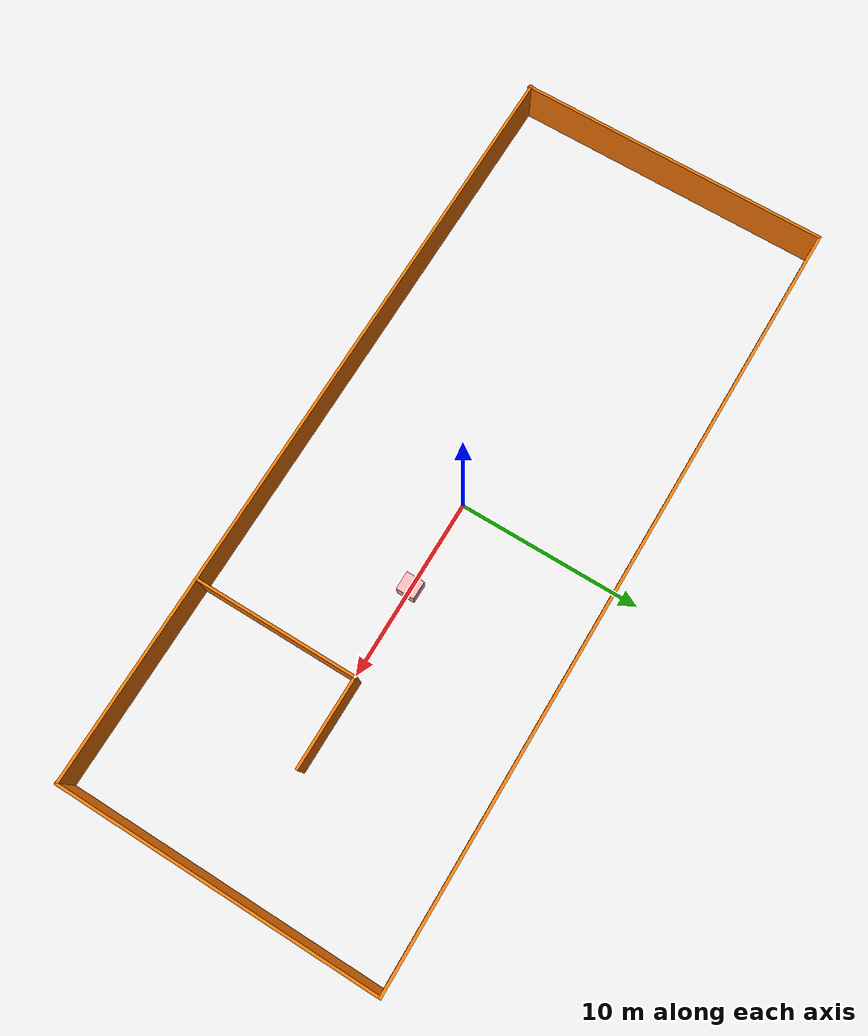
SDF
<?xml version='1.0'?>
<sdf version='1.7'>
  <model name='selfdefine1'>
    <link name='Wall_37'>
      <pose>0.025291 8.67492 0 0 -0 0.002157</pose>
      <self_collide>0</self_collide>
      <enable_wind>0</enable_wind>
      <kinematic>0</kinematic>
      <visual name='Wall_37_Visual'>
        <pose>0 0 1.25 0 -0 0</pose>
        <geometry>
          <box>
            <size>42.6982 0.15 2.5</size>
          </box>
        </geometry>
        <material>
          <script>
            <uri>file://media/materials/scripts/gazebo.material</uri>
            <name>Gazebo/Grey</name>
          </script>
          <ambient>0.996078 0.47451 0.0196078 1</ambient>
          <shader type='pixel'/>
        </material>
        <meta>
          <layer>0</layer>
        </meta>
        <transparency>0</transparency>
        <cast_shadows>1</cast_shadows>
      </visual>
      <collision name='Wall_37_Collision'>
        <laser_retro>0</laser_retro>
        <max_contacts>10</max_contacts>
        <pose>0 0 1.25 0 -0 0</pose>
        <geometry>
          <box>
            <size>42.6982 0.15 2.5</size>
          </box>
        </geometry>
        <surface>
          <friction>
            <ode>
              <mu>1</mu>
              <mu2>1</mu2>
              <fdir1>0 0 0</fdir1>
              <slip1>0</slip1>
              <slip2>0</slip2>
            </ode>
            <torsional>
              <coefficient>1</coefficient>
              <patch_radius>0</patch_radius>
              <surface_radius>0</surface_radius>
              <use_patch_radius>1</use_patch_radius>
              <ode>
                <slip>0</slip>
              </ode>
            </torsional>
          </friction>
          <bounce>
            <restitution_coefficient>0</restitution_coefficient>
            <threshold>1e+06</threshold>
          </bounce>
          <contact>
            <collide_without_contact>0</collide_without_contact>
            <collide_without_contact_bitmask>1</collide_without_contact_bitmask>
            <collide_bitmask>1</collide_bitmask>
            <ode>
              <soft_cfm>0</soft_cfm>
              <soft_erp>0.2</soft_erp>
              <kp>1e+13</kp>
              <kd>1</kd>
              <max_vel>0.01</max_vel>
              <min_depth>0</min_depth>
            </ode>
            <bullet>
              <split_impulse>1</split_impulse>
              <split_impulse_penetration_threshold>-0.01</split_impulse_penetration_threshold>
              <soft_cfm>0</soft_cfm>
              <soft_erp>0.2</soft_erp>
              <kp>1e+13</kp>
              <kd>1</kd>
            </bullet>
          </contact>
        </surface>
      </collision>
    </link>
    <link name='Wall_39'>
      <pose>-21.2488 -0.045966 0 0 0 -1.5708</pose>
      <self_collide>0</self_collide>
      <enable_wind>0</enable_wind>
      <kinematic>0</kinematic>
      <visual name='Wall_39_Visual'>
        <pose>0 0 1.25 0 -0 0</pose>
        <geometry>
          <box>
            <size>17.5 0.15 2.5</size>
          </box>
        </geometry>
        <material>
          <script>
            <uri>file://media/materials/scripts/gazebo.material</uri>
            <name>Gazebo/Grey</name>
          </script>
          <ambient>0.996078 0.47451 0.0196078 1</ambient>
          <shader type='pixel'/>
        </material>
        <meta>
          <layer>0</layer>
        </meta>
        <transparency>0</transparency>
        <cast_shadows>1</cast_shadows>
      </visual>
      <collision name='Wall_39_Collision'>
        <laser_retro>0</laser_retro>
        <max_contacts>10</max_contacts>
        <pose>0 0 1.25 0 -0 0</pose>
        <geometry>
          <box>
            <size>17.5 0.15 2.5</size>
          </box>
        </geometry>
        <surface>
          <friction>
            <ode>
              <mu>1</mu>
              <mu2>1</mu2>
              <fdir1>0 0 0</fdir1>
              <slip1>0</slip1>
              <slip2>0</slip2>
            </ode>
            <torsional>
              <coefficient>1</coefficient>
              <patch_radius>0</patch_radius>
              <surface_radius>0</surface_radius>
              <use_patch_radius>1</use_patch_radius>
              <ode>
                <slip>0</slip>
              </ode>
            </torsional>
          </friction>
          <bounce>
            <restitution_coefficient>0</restitution_coefficient>
            <threshold>1e+06</threshold>
          </bounce>
          <contact>
            <collide_without_contact>0</collide_without_contact>
            <collide_without_contact_bitmask>1</collide_without_contact_bitmask>
            <collide_bitmask>1</collide_bitmask>
            <ode>
              <soft_cfm>0</soft_cfm>
              <soft_erp>0.2</soft_erp>
              <kp>1e+13</kp>
              <kd>1</kd>
              <max_vel>0.01</max_vel>
              <min_depth>0</min_depth>
            </ode>
            <bullet>
              <split_impulse>1</split_impulse>
              <split_impulse_penetration_threshold>-0.01</split_impulse_penetration_threshold>
              <soft_cfm>0</soft_cfm>
              <soft_erp>0.2</soft_erp>
              <kp>1e+13</kp>
              <kd>1</kd>
            </bullet>
          </contact>
        </surface>
      </collision>
    </link>
    <link name='Wall_41'>
      <pose>-2.1e-05 -8.64449 0 0 -0 0.000718</pose>
      <self_collide>0</self_collide>
      <enable_wind>0</enable_wind>
      <kinematic>0</kinematic>
      <visual name='Wall_41_Visual'>
        <pose>0 0 1.25 0 -0 0</pose>
        <geometry>
          <box>
            <size>42.7488 0.15 2.5</size>
          </box>
        </geometry>
        <material>
          <script>
            <uri>file://media/materials/scripts/gazebo.material</uri>
            <name>Gazebo/Grey</name>
          </script>
          <ambient>0.996078 0.47451 0.0196078 1</ambient>
          <shader type='pixel'/>
        </material>
        <meta>
          <layer>0</layer>
        </meta>
        <transparency>0</transparency>
        <cast_shadows>1</cast_shadows>
      </visual>
      <collision name='Wall_41_Collision'>
        <laser_retro>0</laser_retro>
        <max_contacts>10</max_contacts>
        <pose>0 0 1.25 0 -0 0</pose>
        <geometry>
          <box>
            <size>42.7488 0.15 2.5</size>
          </box>
        </geometry>
        <surface>
          <friction>
            <ode>
              <mu>1</mu>
              <mu2>1</mu2>
              <fdir1>0 0 0</fdir1>
              <slip1>0</slip1>
              <slip2>0</slip2>
            </ode>
            <torsional>
              <coefficient>1</coefficient>
              <patch_radius>0</patch_radius>
              <surface_radius>0</surface_radius>
              <use_patch_radius>1</use_patch_radius>
              <ode>
                <slip>0</slip>
              </ode>
            </torsional>
          </friction>
          <bounce>
            <restitution_coefficient>0</restitution_coefficient>
            <threshold>1e+06</threshold>
          </bounce>
          <contact>
            <collide_without_contact>0</collide_without_contact>
            <collide_without_contact_bitmask>1</collide_without_contact_bitmask>
            <collide_bitmask>1</collide_bitmask>
            <ode>
              <soft_cfm>0</soft_cfm>
              <soft_erp>0.2</soft_erp>
              <kp>1e+13</kp>
              <kd>1</kd>
              <max_vel>0.01</max_vel>
              <min_depth>0</min_depth>
            </ode>
            <bullet>
              <split_impulse>1</split_impulse>
              <split_impulse_penetration_threshold>-0.01</split_impulse_penetration_threshold>
              <soft_cfm>0</soft_cfm>
              <soft_erp>0.2</soft_erp>
              <kp>1e+13</kp>
              <kd>1</kd>
            </bullet>
          </contact>
        </surface>
      </collision>
    </link>
    <link name='Wall_42'>
      <pose>21.2994 0.015215 0 0 -0 1.5708</pose>
      <self_collide>0</self_collide>
      <enable_wind>0</enable_wind>
      <kinematic>0</kinematic>
      <visual name='Wall_42_Visual'>
        <pose>0 0 1.25 0 -0 0</pose>
        <geometry>
          <box>
            <size>17.5 0.15 2.5</size>
          </box>
        </geometry>
        <material>
          <script>
            <uri>file://media/materials/scripts/gazebo.material</uri>
            <name>Gazebo/Grey</name>
          </script>
          <ambient>0.996078 0.47451 0.0196078 1</ambient>
          <shader type='pixel'/>
        </material>
        <meta>
          <layer>0</layer>
        </meta>
        <transparency>0</transparency>
        <cast_shadows>1</cast_shadows>
      </visual>
      <collision name='Wall_42_Collision'>
        <laser_retro>0</laser_retro>
        <max_contacts>10</max_contacts>
        <pose>0 0 1.25 0 -0 0</pose>
        <geometry>
          <box>
            <size>17.5 0.15 2.5</size>
          </box>
        </geometry>
        <surface>
          <friction>
            <ode>
              <mu>1</mu>
              <mu2>1</mu2>
              <fdir1>0 0 0</fdir1>
              <slip1>0</slip1>
              <slip2>0</slip2>
            </ode>
            <torsional>
              <coefficient>1</coefficient>
              <patch_radius>0</patch_radius>
              <surface_radius>0</surface_radius>
              <use_patch_radius>1</use_patch_radius>
              <ode>
                <slip>0</slip>
              </ode>
            </torsional>
          </friction>
          <bounce>
            <restitution_coefficient>0</restitution_coefficient>
            <threshold>1e+06</threshold>
          </bounce>
          <contact>
            <collide_without_contact>0</collide_without_contact>
            <collide_without_contact_bitmask>1</collide_without_contact_bitmask>
            <collide_bitmask>1</collide_bitmask>
            <ode>
              <soft_cfm>0</soft_cfm>
              <soft_erp>0.2</soft_erp>
              <kp>1e+13</kp>
              <kd>1</kd>
              <max_vel>0.01</max_vel>
              <min_depth>0</min_depth>
            </ode>
            <bullet>
              <split_impulse>1</split_impulse>
              <split_impulse_penetration_threshold>-0.01</split_impulse_penetration_threshold>
              <soft_cfm>0</soft_cfm>
              <soft_erp>0.2</soft_erp>
              <kp>1e+13</kp>
              <kd>1</kd>
            </bullet>
          </contact>
        </surface>
      </collision>
    </link>
    <link name='Wall_48'>
      <pose>10.2345 -4.11049 0 0 -0 1.5708</pose>
      <self_collide>0</self_collide>
      <enable_wind>0</enable_wind>
      <kinematic>0</kinematic>
      <visual name='Wall_48_Visual'>
        <pose>0 0 1.25 0 -0 0</pose>
        <geometry>
          <box>
            <size>9 0.15 2.5</size>
          </box>
        </geometry>
        <material>
          <script>
            <uri>file://media/materials/scripts/gazebo.material</uri>
            <name>Gazebo/Grey</name>
          </script>
          <ambient>0.996078 0.47451 0.0196078 1</ambient>
          <shader type='pixel'/>
        </material>
        <meta>
          <layer>0</layer>
        </meta>
        <transparency>0</transparency>
        <cast_shadows>1</cast_shadows>
      </visual>
      <collision name='Wall_48_Collision'>
        <laser_retro>0</laser_retro>
        <max_contacts>10</max_contacts>
        <pose>0 0 1.25 0 -0 0</pose>
        <geometry>
          <box>
            <size>9 0.15 2.5</size>
          </box>
        </geometry>
        <surface>
          <friction>
            <ode>
              <mu>1</mu>
              <mu2>1</mu2>
              <fdir1>0 0 0</fdir1>
              <slip1>0</slip1>
              <slip2>0</slip2>
            </ode>
            <torsional>
              <coefficient>1</coefficient>
              <patch_radius>0</patch_radius>
              <surface_radius>0</surface_radius>
              <use_patch_radius>1</use_patch_radius>
              <ode>
                <slip>0</slip>
              </ode>
            </torsional>
          </friction>
          <bounce>
            <restitution_coefficient>0</restitution_coefficient>
            <threshold>1e+06</threshold>
          </bounce>
          <contact>
            <collide_without_contact>0</collide_without_contact>
            <collide_without_contact_bitmask>1</collide_without_contact_bitmask>
            <collide_bitmask>1</collide_bitmask>
            <ode>
              <soft_cfm>0</soft_cfm>
              <soft_erp>0.2</soft_erp>
              <kp>1e+13</kp>
              <kd>1</kd>
              <max_vel>0.01</max_vel>
              <min_depth>0</min_depth>
            </ode>
            <bullet>
              <split_impulse>1</split_impulse>
              <split_impulse_penetration_threshold>-0.01</split_impulse_penetration_threshold>
              <soft_cfm>0</soft_cfm>
              <soft_erp>0.2</soft_erp>
              <kp>1e+13</kp>
              <kd>1</kd>
            </bullet>
          </contact>
        </surface>
      </collision>
    </link>
    <link name='Wall_50'>
      <pose>12.6595 0.314514 0 0 -0 0</pose>
      <self_collide>0</self_collide>
      <enable_wind>0</enable_wind>
      <kinematic>0</kinematic>
      <visual name='Wall_50_Visual'>
        <pose>0 0 1.25 0 -0 0</pose>
        <geometry>
          <box>
            <size>5 0.15 2.5</size>
          </box>
        </geometry>
        <material>
          <script>
            <uri>file://media/materials/scripts/gazebo.material</uri>
            <name>Gazebo/Grey</name>
          </script>
          <ambient>0.996078 0.47451 0.0196078 1</ambient>
          <shader type='pixel'/>
        </material>
        <meta>
          <layer>0</layer>
        </meta>
        <transparency>0</transparency>
        <cast_shadows>1</cast_shadows>
      </visual>
      <collision name='Wall_50_Collision'>
        <laser_retro>0</laser_retro>
        <max_contacts>10</max_contacts>
        <pose>0 0 1.25 0 -0 0</pose>
        <geometry>
          <box>
            <size>5 0.15 2.5</size>
          </box>
        </geometry>
        <surface>
          <friction>
            <ode>
              <mu>1</mu>
              <mu2>1</mu2>
              <fdir1>0 0 0</fdir1>
              <slip1>0</slip1>
              <slip2>0</slip2>
            </ode>
            <torsional>
              <coefficient>1</coefficient>
              <patch_radius>0</patch_radius>
              <surface_radius>0</surface_radius>
              <use_patch_radius>1</use_patch_radius>
              <ode>
                <slip>0</slip>
              </ode>
            </torsional>
          </friction>
          <bounce>
            <restitution_coefficient>0</restitution_coefficient>
            <threshold>1e+06</threshold>
          </bounce>
          <contact>
            <collide_without_contact>0</collide_without_contact>
            <collide_without_contact_bitmask>1</collide_without_contact_bitmask>
            <collide_bitmask>1</collide_bitmask>
            <ode>
              <soft_cfm>0</soft_cfm>
              <soft_erp>0.2</soft_erp>
              <kp>1e+13</kp>
              <kd>1</kd>
              <max_vel>0.01</max_vel>
              <min_depth>0</min_depth>
            </ode>
            <bullet>
              <split_impulse>1</split_impulse>
              <split_impulse_penetration_threshold>-0.01</split_impulse_penetration_threshold>
              <soft_cfm>0</soft_cfm>
              <soft_erp>0.2</soft_erp>
              <kp>1e+13</kp>
              <kd>1</kd>
            </bullet>
          </contact>
        </surface>
      </collision>
    </link>
    <link name='link_0'>
      <inertial>
        <mass>1000</mass>
        <inertia>
          <ixx>166.667</ixx>
          <ixy>0</ixy>
          <ixz>0</ixz>
          <iyy>166.667</iyy>
          <iyz>0</iyz>
          <izz>166.667</izz>
        </inertia>
        <pose>0 0 0 0 -0 0</pose>
      </inertial>
      <pose>5 0 0.5 0 -0 0</pose>
      <self_collide>0</self_collide>
      <enable_wind>0</enable_wind>
      <kinematic>0</kinematic>
      <gravity>1</gravity>
      <visual name='visual'>
        <pose>0 0 0 0 -0 0</pose>
        <geometry>
          <box>
            <size>1 1 1</size>
          </box>
        </geometry>
        <material>
          <lighting>1</lighting>
          <script>
            <uri>file://media/materials/scripts/gazebo.material</uri>
            <name>Gazebo/Grey</name>
          </script>
          <shader type='pixel'>
            <normal_map>__default__</normal_map>
          </shader>
          <ambient>1 0.3 0.3 1</ambient>
          <diffuse>1 0.7 0.7 1</diffuse>
          <specular>1 0.01 0.01 1</specular>
          <emissive>1 0 0 1</emissive>
        </material>
        <transparency>0</transparency>
        <cast_shadows>1</cast_shadows>
      </visual>
      <collision name='collision'>
        <laser_retro>0</laser_retro>
        <max_contacts>10</max_contacts>
        <pose>0 0 0 0 -0 0</pose>
        <geometry>
          <box>
            <size>1 1 1</size>
          </box>
        </geometry>
        <surface>
          <friction>
            <ode>
              <mu>1</mu>
              <mu2>1</mu2>
              <fdir1>0 0 0</fdir1>
              <slip1>0</slip1>
              <slip2>0</slip2>
            </ode>
            <torsional>
              <coefficient>1</coefficient>
              <patch_radius>0</patch_radius>
              <surface_radius>0</surface_radius>
              <use_patch_radius>1</use_patch_radius>
              <ode>
                <slip>0</slip>
              </ode>
            </torsional>
          </friction>
          <bounce>
            <restitution_coefficient>0</restitution_coefficient>
            <threshold>1e+06</threshold>
          </bounce>
          <contact>
            <collide_without_contact>0</collide_without_contact>
            <collide_without_contact_bitmask>1</collide_without_contact_bitmask>
            <collide_bitmask>1</collide_bitmask>
            <ode>
              <soft_cfm>0</soft_cfm>
              <soft_erp>0.2</soft_erp>
              <kp>1e+13</kp>
              <kd>1</kd>
              <max_vel>0.01</max_vel>
              <min_depth>0</min_depth>
            </ode>
            <bullet>
              <split_impulse>1</split_impulse>
              <split_impulse_penetration_threshold>-0.01</split_impulse_penetration_threshold>
              <soft_cfm>0</soft_cfm>
              <soft_erp>0.2</soft_erp>
              <kp>1e+13</kp>
              <kd>1</kd>
            </bullet>
          </contact>
        </surface>
      </collision>
    </link>
    <static>1</static>
    <allow_auto_disable>1</allow_auto_disable>
  </model>
</sdf>
